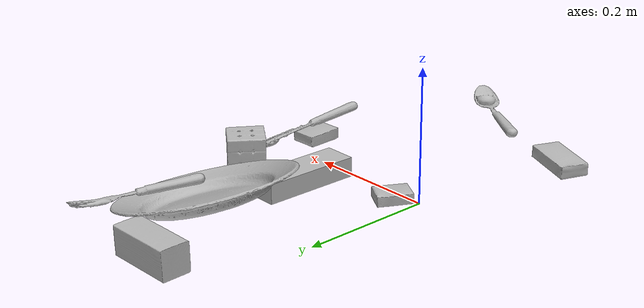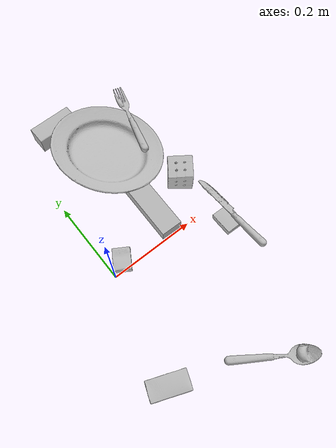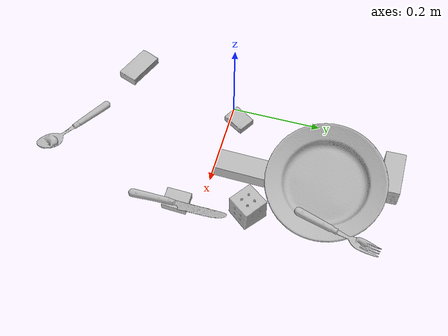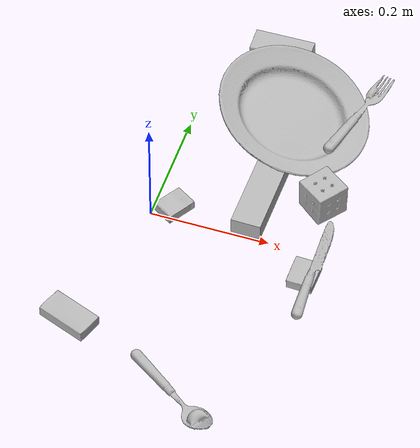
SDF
<sdf version="1.4">
  <world name="default">
    <light name="light1" type="point">
      <pose>0 0 1 0 0 0</pose>
      <diffuse>3 3 3 1</diffuse>
      <specular>3 3 3 1</specular>
    </light>
    <light name="light2" type="point">
      <pose>0 0.5 2 0 0 0</pose>
      <diffuse>1 1 1 1</diffuse>
      <specular>1 1 1 1</specular>
    </light>
    <light name="light3" type="point">
      <pose>0 0.5 2 0 0 0</pose>
      <diffuse>3 3 3 1</diffuse>
      <specular>3 3 3 1</specular>
    </light>
    <scene>
      <ambient>0.7 0.7 0.7</ambient>
    </scene>
    <model name="box11">
      <link name="link_box11">
        <collision name="default">
          <geometry>
            <mesh>
              <uri>model://cracker_box/collision_meshes/collision.obj</uri>
              <scale>0.25 0.25 0.25</scale>
            </mesh>
          </geometry>
          <surface>
            <friction>
              <ode>
                <mu>0.5</mu>
                <mu2>0.5</mu2>
              </ode>
            </friction>
          <contact>
        <ode>
            <max_vel>0</max_vel>
            <min_depth>0.0001</min_depth>
            <kp>1e8</kp>
        </ode>
    </contact></surface>
        </collision>
        <visual name="default">
          <geometry>
            <mesh>
              <uri>model://cracker_box/visual_meshes/visual.dae</uri>
              <scale>0.25 0.25 0.25</scale>
            </mesh>
          </geometry>
        </visual>
        <inertial>
          <mass>0.022244147956371307</mass>
          <pose>0.00023660442093387246 6.358561950037256e-05 -0.00042573834070935845 -0.00031620774024180285 -0.011106489600345375 0.0025467943041161943</pose>
          <inertia>
            <ixx>3.5361988e-06</ixx>
            <iyy>5.838959e-06</iyy>
            <izz>8.33273e-06</izz>
            <ixy>0</ixy>
            <ixz>0</ixz>
            <iyz>0</iyz>
          </inertia>
        </inertial>
      </link>
      <pose>0.03261870518326759 0.020731138065457344 0.009096028283238411 -0.014050246253561369 -0.005016852900611886 -2.1174288646446695</pose>
    </model>
    <model name="box12">
      <link name="link_box12">
        <collision name="default">
          <geometry>
            <mesh>
              <uri>model://wood_block/collision_meshes/collision.obj</uri>
              <scale>0.5 0.5 0.5</scale>
            </mesh>
          </geometry>
          <surface>
            <friction>
              <ode>
                <mu>0.5</mu>
                <mu2>0.5</mu2>
              </ode>
            </friction>
          <contact>
        <ode>
            <max_vel>0</max_vel>
            <min_depth>0.0001</min_depth>
            <kp>1e8</kp>
        </ode>
    </contact></surface>
        </collision>
        <visual name="default">
          <geometry>
            <mesh>
              <uri>model://wood_block/visual_meshes/visual.dae</uri>
              <scale>0.5 0.5 0.5</scale>
            </mesh>
          </geometry>
        </visual>
        <inertial>
          <mass>0.19826212525367737</mass>
          <pose>-2.9066577553749084e-06 -0.00028540476341731846 0.00013204291462898254 -0.05221087153268513 -0.0051926957009938435 -0.006861378574469354</pose>
          <inertia>
            <ixx>6.632619e-05</ixx>
            <iyy>0.00020952444</iyy>
            <izz>0.0002087407</izz>
            <ixy>0</ixy>
            <ixz>0</ixz>
            <iyz>0</iyz>
          </inertia>
        </inertial>
      </link>
      <pose>0.10186473280191422 0.37910759449005127 0.022629570215940475 -0.005270068770853887 0.005715332831575091 0.016976188404821704</pose>
    </model>
    <model name="box13">
      <link name="link_box13">
        <collision name="default">
          <geometry>
            <mesh>
              <uri>model://pudding_box/collision_meshes/collision.obj</uri>
              <scale>0.5 0.5 0.5</scale>
            </mesh>
          </geometry>
          <surface>
            <friction>
              <ode>
                <mu>0.5</mu>
                <mu2>0.5</mu2>
              </ode>
            </friction>
          <contact>
        <ode>
            <max_vel>0</max_vel>
            <min_depth>0.0001</min_depth>
            <kp>1e8</kp>
        </ode>
    </contact></surface>
        </collision>
        <visual name="default">
          <geometry>
            <mesh>
              <uri>model://pudding_box/visual_meshes/visual.dae</uri>
              <scale>0.5 0.5 0.5</scale>
            </mesh>
          </geometry>
        </visual>
        <inertial>
          <mass>0.049741584807634354</mass>
          <pose>0.00024474109522998333 0.0004033942532259971 -0.0002594413817860186 0.005213101800084814 -0.006603799174386178 0.020079821432586128</pose>
          <inertia>
            <ixx>1.4057575e-05</ixx>
            <iyy>9.458037e-06</iyy>
            <izz>2.0759684e-05</izz>
            <ixy>0</ixy>
            <ixz>0</ixz>
            <iyz>0</iyz>
          </inertia>
        </inertial>
      </link>
      <pose>0.27572101354599 -0.05088788643479347 0.009862893261015415 0.022344621114016493 -0.011393646705482024 3.123001203649023</pose>
    </model>
    <model name="box21">
      <link name="link_box21">
        <collision name="default">
          <geometry>
            <mesh>
              <uri>model://rubiks_cube/collision_meshes/collision.obj</uri>
              <scale>1.0 1.0 1.0</scale>
            </mesh>
          </geometry>
          <surface>
            <friction>
              <ode>
                <mu>0.5</mu>
                <mu2>0.5</mu2>
              </ode>
            </friction>
          <contact>
        <ode>
            <max_vel>0</max_vel>
            <min_depth>0.0001</min_depth>
            <kp>1e8</kp>
        </ode>
    </contact></surface>
        </collision>
        <visual name="default">
          <geometry>
            <mesh>
              <uri>model://rubiks_cube/visual_meshes/visual.dae</uri>
              <scale>1.0 1.0 1.0</scale>
            </mesh>
          </geometry>
        </visual>
        <inertial>
          <mass>0.14589080214500427</mass>
          <pose>2.6721043468569405e-05 5.256966323941015e-05 -7.264316082000732e-06 -0.054672881442690106 -0.09814117646273159 -0.034455034483302956</pose>
          <inertia>
            <ixx>8.061447e-05</ixx>
            <iyy>8.023852e-05</iyy>
            <izz>8.128248e-05</izz>
            <ixy>0</ixy>
            <ixz>0</ixz>
            <iyz>0</iyz>
          </inertia>
        </inertial>
      </link>
      <pose>0.2599726915359497 0.10079020261764526 0.028678927570581436 -5.184062874679258e-06 -2.3805320559753163e-06 2.508383653120515</pose>
    </model>
    <model name="box22">
      <link name="link_box22">
        <collision name="default">
          <geometry>
            <mesh>
              <uri>model://jenga/collision_meshes/collision.obj</uri>
              <scale>1.0 1.0 1.0</scale>
            </mesh>
          </geometry>
          <surface>
            <friction>
              <ode>
                <mu>0.5</mu>
                <mu2>0.5</mu2>
              </ode>
            </friction>
          <contact>
        <ode>
            <max_vel>0</max_vel>
            <min_depth>0.0001</min_depth>
            <kp>1e8</kp>
        </ode>
    </contact></surface>
        </collision>
        <visual name="default">
          <geometry>
            <mesh>
              <uri>model://jenga/visual_meshes/visual.dae</uri>
              <scale>1.0 1.0 1.0</scale>
            </mesh>
          </geometry>
        </visual>
        <inertial>
          <mass>0.13963866233825684</mass>
          <pose>-2.502855807051674e-07 -0.00010250010382151231 -4.092339804628864e-05 0.0 -7.342154049184251e-07 0.0</pose>
          <inertia>
            <ixx>3.8641407e-05</ixx>
            <iyy>0.00026183313</iyy>
            <izz>0.00027952914</izz>
            <ixy>0</ixy>
            <ixz>0</ixz>
            <iyz>0</iyz>
          </inertia>
        </inertial>
      </link>
      <pose>0.160635843873024 0.07942581176757812 0.01499927043914795 6.094751948603014e-06 6.959234289003849e-06 -1.5882468022077638</pose>
    </model>
    <model name="box23">
      <link name="link_box23">
        <collision name="default">
          <geometry>
            <mesh>
              <uri>model://sugar_box/collision_meshes/collision.obj</uri>
              <scale>0.5 0.5 0.5</scale>
            </mesh>
          </geometry>
          <surface>
            <friction>
              <ode>
                <mu>0.5</mu>
                <mu2>0.5</mu2>
              </ode>
            </friction>
          <contact>
        <ode>
            <max_vel>0</max_vel>
            <min_depth>0.0001</min_depth>
            <kp>1e8</kp>
        </ode>
    </contact></surface>
        </collision>
        <visual name="default">
          <geometry>
            <mesh>
              <uri>model://sugar_box/visual_meshes/visual.dae</uri>
              <scale>0.5 0.5 0.5</scale>
            </mesh>
          </geometry>
        </visual>
        <inertial>
          <mass>0.09426560252904892</mass>
          <pose>0.0005171863595023751 1.924554817378521e-05 -0.00018182402709499002 -0.00040462606744182556 0.0010506635219056535 0.0026153790218759383</pose>
          <inertia>
            <ixx>1.963546e-05</ixx>
            <iyy>6.346583e-05</iyy>
            <izz>7.597618e-05</izz>
            <ixy>0</ixy>
            <ixz>0</ixz>
            <iyz>0</iyz>
          </inertia>
        </inertial>
      </link>
      <pose>-0.0507088303565979 -0.24637453258037567 0.011399300768971443 0.0007752074855697638 -0.02343317373332903 -0.3768521159018839</pose>
    </model>
    <model name="plate1">
      <link name="link_plate1">
        <collision name="default">
          <geometry>
            <mesh>
              <uri>model://plate/collision_meshes/collision.obj</uri>
              <scale>1.0 1.0 1.0</scale>
            </mesh>
          </geometry>
          <surface>
            <friction>
              <ode>
                <mu>0.5</mu>
                <mu2>0.5</mu2>
              </ode>
            </friction>
          <contact>
        <ode>
            <max_vel>0</max_vel>
            <min_depth>0.0001</min_depth>
            <kp>1e8</kp>
        </ode>
    </contact></surface>
        </collision>
        <visual name="default">
          <geometry>
            <mesh>
              <uri>model://plate/visual_meshes/visual.dae</uri>
              <scale>1.0 1.0 1.0</scale>
            </mesh>
          </geometry>
        </visual>
        <inertial>
          <mass>0.11197491735219955</mass>
          <pose>-0.0006044617621228099 0.00027825823053717613 -0.001056199544109404 0.00221882520869589 -0.003225452482750881 0.45259630068278056</pose>
          <inertia>
            <ixx>0.0005238209</ixx>
            <iyy>0.00051881076</iyy>
            <izz>0.0010245154</izz>
            <ixy>0</ixy>
            <ixz>0</ixz>
            <iyz>0</iyz>
          </inertia>
        </inertial>
      </link>
      <pose>0.16189052164554596 0.24598369002342224 0.03713707625865936 0.24465612474136078 0.17996037542583607 0.9914527395707035</pose>
    </model>
    <model name="silverware1">
      <link name="link_silverware1">
        <collision name="default">
          <geometry>
            <mesh>
              <uri>model://knife/collision_meshes/collision.obj</uri>
              <scale>1.0 1.0 1.0</scale>
            </mesh>
          </geometry>
          <surface>
            <friction>
              <ode>
                <mu>0.5</mu>
                <mu2>0.5</mu2>
              </ode>
            </friction>
          <contact>
        <ode>
            <max_vel>0</max_vel>
            <min_depth>0.0001</min_depth>
            <kp>1e8</kp>
        </ode>
    </contact></surface>
        </collision>
        <visual name="default">
          <geometry>
            <mesh>
              <uri>model://knife/visual_meshes/visual.dae</uri>
              <scale>1.0 1.0 1.0</scale>
            </mesh>
          </geometry>
        </visual>
        <inertial>
          <mass>0.01465720683336258</mass>
          <pose>-0.023785248398780823 0.0015275123296305537 5.062019408796914e-05 0.07304601322977639 0.017248415474028462 -0.007409829977624996</pose>
          <inertia>
            <ixx>4.1603096e-07</ixx>
            <iyy>5.6310615e-05</iyy>
            <izz>5.6444613e-05</izz>
            <ixy>0</ixy>
            <ixz>0</ixz>
            <iyz>0</iyz>
          </inertia>
        </inertial>
      </link>
      <pose>0.29097118973731995 -0.04482850432395935 0.021824710071086884 0.25682248325365975 0.057441206975079026 1.5931162592517192</pose>
    </model>
    <model name="silverware2">
      <link name="link_silverware2">
        <collision name="default">
          <geometry>
            <mesh>
              <uri>model://spoon/collision_meshes/collision.obj</uri>
              <scale>1.0 1.0 1.0</scale>
            </mesh>
          </geometry>
          <surface>
            <friction>
              <ode>
                <mu>0.5</mu>
                <mu2>0.5</mu2>
              </ode>
            </friction>
          <contact>
        <ode>
            <max_vel>0</max_vel>
            <min_depth>0.0001</min_depth>
            <kp>1e8</kp>
        </ode>
    </contact></surface>
        </collision>
        <visual name="default">
          <geometry>
            <mesh>
              <uri>model://spoon/visual_meshes/visual.dae</uri>
              <scale>1.0 1.0 1.0</scale>
            </mesh>
          </geometry>
        </visual>
        <inertial>
          <mass>0.03463635593652725</mass>
          <pose>-0.005526320077478886 -0.0016034176805987954 -0.0007271658396348357 0.035218626746325574 -0.03906584480927328 0.006150611928774215</pose>
          <inertia>
            <ixx>1.9265303e-06</ixx>
            <iyy>0.0001317902</iyy>
            <izz>0.00013274024</izz>
            <ixy>0</ixy>
            <ixz>0</ixz>
            <iyz>0</iyz>
          </inertia>
        </inertial>
      </link>
      <pose>0.15051956474781036 -0.33234545588493347 0.00838526338338852 0.006731774895086089 0.026893005931824233 -0.5901820496332132</pose>
    </model>
    <model name="silverware3">
      <link name="link_silverware3">
        <collision name="default">
          <geometry>
            <mesh>
              <uri>model://fork/collision_meshes/collision.obj</uri>
              <scale>1.0 1.0 1.0</scale>
            </mesh>
          </geometry>
          <surface>
            <friction>
              <ode>
                <mu>0.5</mu>
                <mu2>0.5</mu2>
              </ode>
            </friction>
          <contact>
        <ode>
            <max_vel>0</max_vel>
            <min_depth>0.0001</min_depth>
            <kp>1e8</kp>
        </ode>
    </contact></surface>
        </collision>
        <visual name="default">
          <geometry>
            <mesh>
              <uri>model://fork/visual_meshes/visual.dae</uri>
              <scale>1.0 1.0 1.0</scale>
            </mesh>
          </geometry>
        </visual>
        <inertial>
          <mass>0.019285527989268303</mass>
          <pose>-0.029570043087005615 0.0004658823017962277 0.0003218861238565296 -0.013551447953525298 -0.010977835959949084 0.014453901308334693</pose>
          <inertia>
            <ixx>6.760669e-07</ixx>
            <iyy>5.0348972e-05</iyy>
            <izz>5.065136e-05</izz>
            <ixy>0</ixy>
            <ixz>0</ixz>
            <iyz>0</iyz>
          </inertia>
        </inertial>
      </link>
      <pose>0.26155292987823486 0.2912208139896393 0.019194509834051132 0.13845130811525153 0.039499122948362005 1.300139284151651</pose>
    </model>
  <physics type="ode">
      <max_contacts>50</max_contacts>
      <ode>
        <solver>
          <type>quick</type>
          <iters>75</iters>
        </solver>
        <constraints>
          <contact_max_correcting_vel>0</contact_max_correcting_vel>
          <contact_surface_layer>0</contact_surface_layer>
        </constraints>
      </ode>
    </physics></world>
</sdf>
